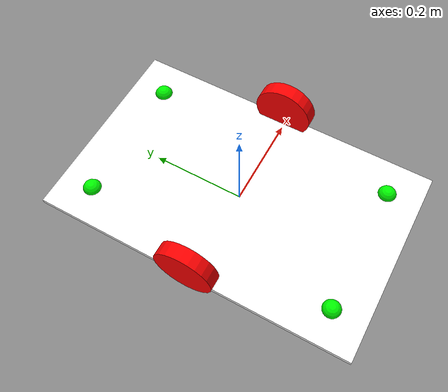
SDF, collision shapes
<?xml version="1.0"?>
<sdf version="1.10">
  <model name='vehicle_blue' canonical_link='chassis'>
    <!-- Óáðàë pose relative_to, òàê êàê îí áóäåò çàäàâàòüñÿ ïðè âêëþ÷åíèè -->

    <!--chassis-->
    <link name='chassis'>
      <pose relative_to='__model__'>0 0 0.0235 0 0 0</pose>
      <inertial>
        <mass>1.14395</mass>
        <inertia>
          <ixx>0.095329</ixx>
          <ixy>0</ixy>
          <ixz>0</ixz>
          <iyy>0.381317</iyy>
          <iyz>0</iyz>
          <izz>0.476646</izz>
        </inertia>
      </inertial>
      <visual name='visual'>
        <geometry>
          <mesh>
            <uri>file://robot_model/robot_frame.gltf</uri>
            <scale>1 1 1</scale>
          </mesh>
        </geometry>
        <material>
          <ambient>1.0 1.0 1.0</ambient>
          <diffuse>1.0 1.0 1.0</diffuse>
          <specular>0.04 0.04 0.04</specular>
          <emissive>0.1 0.1 0.1</emissive>
          <pbr>
            <metal>
              <albedo_map>file://robot_model/textures/Metal011_2K-JPG_Color.jpg</albedo_map>
              <roughness_map>file://robot_model/textures/Metal011_2K-JPG_Roughness.jpg</roughness_map>
              <metalness_map>file://robot_model/textures/Metal011_2K-JPG_Metalness.jpg</metalness_map>
              <normal_map>file://robot_model/textures/Metal011_2K-JPG_NormalGL.jpg</normal_map>
            </metal>
          </pbr>
        </material>
      </visual>
      <collision name='collision'>
        <geometry>
          <box>
            <size>0.425 0.685 0.01</size>
          </box>
        </geometry>
      </collision>
    </link>

    <!--left wheel-->
    <link name='left_wheel'>
      <pose relative_to="chassis">0.2075 0 0.039 -1.5707 0 1.5707</pose>
      <inertial>
        <mass>1</mass>
        <inertia>
          <ixx>0.043333</ixx>
          <ixy>0</ixy>
          <ixz>0</ixz>
          <iyy>0.043333</iyy>
          <iyz>0</iyz>
          <izz>0.08</izz>
        </inertia>
      </inertial>
      <visual name='visual'>
        <geometry>
          <cylinder>
            <radius>0.0625</radius>
            <length>0.03</length>
          </cylinder>
        </geometry>
        <material>
          <ambient>1.0 0.0 0.0 1</ambient>
          <diffuse>1.0 0.0 0.0 1</diffuse>
          <specular>1.0 0.0 0.0 1</specular>
        </material>
      </visual>
      <collision name='collision'>
        <geometry>
          <cylinder>
            <radius>0.0625</radius>
            <length>0.03</length>
          </cylinder>
        </geometry>
      </collision>
    </link>

    <!--right wheel-->
    <link name='right_wheel'>
      <pose relative_to="chassis">-0.2075 0 0.039 -1.5707 0 1.5707</pose>
      <inertial>
        <mass>1</mass>
        <inertia>
          <ixx>0.043333</ixx>
          <ixy>0</ixy>
          <ixz>0</ixz>
          <iyy>0.043333</iyy>
          <iyz>0</iyz>
          <izz>0.08</izz>
        </inertia>
      </inertial>
      <visual name='visual'>
        <geometry>
          <cylinder>
            <radius>0.0625</radius>
            <length>0.03</length>
          </cylinder>
        </geometry>
        <material>
          <ambient>1.0 0.0 0.0 1</ambient>
          <diffuse>1.0 0.0 0.0 1</diffuse>
          <specular>1.0 0.0 0.0 1</specular>
        </material>
      </visual>
      <collision name='collision'>
        <geometry>
          <cylinder>
            <radius>0.0625</radius>
            <length>0.03</length>
          </cylinder>
        </geometry>
      </collision>
    </link>

     <!-- ===== CASTER WHEELS ===== -->

    <!--caster frame front left-->
    <frame name="caster_frame_fl" attached_to='chassis'>
      <pose>0.1385 -0.2707 -0.0005 0 0 0</pose>
    </frame>

    <!--caster frame front right-->
    <frame name="caster_frame_fr" attached_to='chassis'>
      <pose>-0.1385 -0.2707 -0.0005 0 0 0</pose>
    </frame>

    <!--caster frame back left-->
    <frame name="caster_frame_bl" attached_to='chassis'>
      <pose>0.1393 0.2709 -0.0005 0 0 0</pose>
    </frame>

    <!--caster frame back right-->
    <frame name="caster_frame_br" attached_to='chassis'>
      <pose>-0.1393 0.2709 -0.0005 0 0 0</pose>
    </frame>

    <!--caster wheel front left-->
    <link name='caster_fl'>
      <pose relative_to='caster_frame_fl'/>
      <inertial>
        <mass>1</mass>
        <inertia>
          <ixx>0.016</ixx>
          <ixy>0</ixy>
          <ixz>0</ixz>
          <iyy>0.016</iyy>
          <iyz>0</iyz>
          <izz>0.016</izz>
        </inertia>
      </inertial>
      <visual name='visual'>
        <geometry>
          <sphere>
            <radius>0.02</radius>
          </sphere>
        </geometry>
        <material>
          <ambient>0.0 1 0.0 1</ambient>
          <diffuse>0.0 1 0.0 1</diffuse>
          <specular>0.0 1 0.0 1</specular>
        </material>
      </visual>
      <collision name='collision'>
        <geometry>
          <sphere>
            <radius>0.02</radius>
          </sphere>
        </geometry>
      </collision>
    </link>

    <!--caster wheel front right-->
    <link name='caster_fr'>
      <pose relative_to='caster_frame_fr'/>
      <inertial>
        <mass>1</mass>
        <inertia>
          <ixx>0.016</ixx>
          <ixy>0</ixy>
          <ixz>0</ixz>
          <iyy>0.016</iyy>
          <iyz>0</iyz>
          <izz>0.016</izz>
        </inertia>
      </inertial>
      <visual name='visual'>
        <geometry>
          <sphere>
            <radius>0.02</radius>
          </sphere>
        </geometry>
        <material>
          <ambient>0.0 1 0.0 1</ambient>
          <diffuse>0.0 1 0.0 1</diffuse>
          <specular>0.0 1 0.0 1</specular>
        </material>
      </visual>
      <collision name='collision'>
        <geometry>
          <sphere>
            <radius>0.02</radius>
          </sphere>
        </geometry>
      </collision>
    </link>

    <!--caster wheel back left-->
    <link name='caster_bl'>
      <pose relative_to='caster_frame_bl'/>
      <inertial>
        <mass>1</mass>
        <inertia>
          <ixx>0.016</ixx>
          <ixy>0</ixy>
          <ixz>0</ixz>
          <iyy>0.016</iyy>
          <iyz>0</iyz>
          <izz>0.016</izz>
        </inertia>
      </inertial>
      <visual name='visual'>
        <geometry>
          <sphere>
            <radius>0.02</radius>
          </sphere>
        </geometry>
        <material>
          <ambient>0.0 1 0.0 1</ambient>
          <diffuse>0.0 1 0.0 1</diffuse>
          <specular>0.0 1 0.0 1</specular>
        </material>
      </visual>
      <collision name='collision'>
        <geometry>
          <sphere>
            <radius>0.02</radius>
          </sphere>
        </geometry>
      </collision>
    </link>

    <!--caster wheel back right-->
    <link name='caster_br'>
      <pose relative_to='caster_frame_br'/>
      <inertial>
        <mass>1</mass>
        <inertia>
          <ixx>0.016</ixx>
          <ixy>0</ixy>
          <ixz>0</ixz>
          <iyy>0.016</iyy>
          <iyz>0</iyz>
          <izz>0.016</izz>
        </inertia>
      </inertial>
      <visual name='visual'>
        <geometry>
          <sphere>
            <radius>0.02</radius>
          </sphere>
        </geometry>
        <material>
          <ambient>0.0 1 0.0 1</ambient>
          <diffuse>0.0 1 0.0 1</diffuse>
          <specular>0.0 1 0.0 1</specular>
        </material>
      </visual>
      <collision name='collision'>
        <geometry>
          <sphere>
            <radius>0.02</radius>
          </sphere>
        </geometry>
      </collision>
    </link>

    <!-- ===== ØÀÐÍÈÐÛ ===== -->

    <!--left wheel joint-->
    <joint name='left_wheel_joint' type='revolute'>
      <pose relative_to='left_wheel'/>
      <parent>chassis</parent>
      <child>left_wheel</child>
      <axis>
        <xyz expressed_in='__model__'>1 0 0</xyz>
        <limit>
          <lower>-1.79769e+308</lower>
          <upper>1.79769e+308</upper>
        </limit>
      </axis>
    </joint>

    <!--right wheel joint-->
    <joint name='right_wheel_joint' type='revolute'>
      <pose relative_to='right_wheel'/>
      <parent>chassis</parent>
      <child>right_wheel</child>
      <axis>
        <xyz expressed_in='__model__'>1 0 0</xyz>
        <limit>
          <lower>-1.79769e+308</lower>
          <upper>1.79769e+308</upper>
        </limit>
      </axis>
    </joint>

    <!--caster wheel joint front left-->
    <joint name='caster_wheel_fl' type='ball'>
      <parent>chassis</parent>
      <child>caster_fl</child>
    </joint>

    <!--caster wheel joint front right-->
    <joint name='caster_wheel_fr' type='ball'>
      <parent>chassis</parent>
      <child>caster_fr</child>
    </joint>

    <!--caster wheel joint back left-->
    <joint name='caster_wheel_bl' type='ball'>
      <parent>chassis</parent>
      <child>caster_bl</child>
    </joint>

    <!--caster wheel joint back right-->
    <joint name='caster_wheel_br' type='ball'>
      <parent>chassis</parent>
      <child>caster_br</child>
    </joint>

    <plugin
        filename="gz-sim-diff-drive-system"
        name="gz::sim::systems::DiffDrive">
        <left_joint>left_wheel_joint</left_joint>
        <right_joint>right_wheel_joint</right_joint>
        <wheel_separation>0.415</wheel_separation>
        <wheel_radius>0.0625</wheel_radius>
        <odom_publish_frequency>1</odom_publish_frequency>
        <topic>cmd_vel</topic>
    </plugin>

    <!-- Moving Forward-->
    <plugin filename="gz-sim-triggered-publisher-system"
            name="gz::sim::systems::TriggeredPublisher">
        <input type="gz.msgs.Int32" topic="/keyboard/keypress">
            <match field="data">87</match>
        </input>
        <output type="gz.msgs.Twist" topic="/cmd_vel">
            linear: {x: 0.5}, angular: {z: 0.0}
        </output>
    </plugin>

    <!-- Moving Backward-->
    <plugin filename="gz-sim-triggered-publisher-system"
            name="gz::sim::systems::TriggeredPublisher">
        <input type="gz.msgs.Int32" topic="/keyboard/keypress">
            <match field="data">83</match>
        </input>
        <output type="gz.msgs.Twist" topic="/cmd_vel">
            linear: {x: -0.5}, angular: {z: 0.0}
        </output>
    </plugin>

    <!-- Moving Left-->
    <plugin filename="gz-sim-triggered-publisher-system"
            name="gz::sim::systems::TriggeredPublisher">
        <input type="gz.msgs.Int32" topic="/keyboard/keypress">
            <match field="data">65</match>
        </input>
        <output type="gz.msgs.Twist" topic="/cmd_vel">
            linear: {x: 0.0}, angular: {z: 0.5}
        </output>
    </plugin>

    <!-- Moving Right-->
    <plugin filename="gz-sim-triggered-publisher-system"
            name="gz::sim::systems::TriggeredPublisher">
        <input type="gz.msgs.Int32" topic="/keyboard/keypress">
            <match field="data">68</match>
        </input>
        <output type="gz.msgs.Twist" topic="/cmd_vel">
            linear: {x: 0.0}, angular: {z: -0.5}
        </output>
    </plugin>

  </model>
</sdf>
